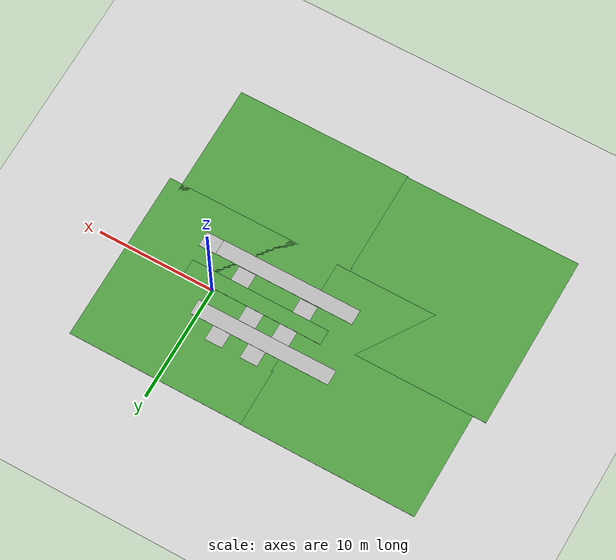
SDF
<sdf version="1.7">
 <world name="default">
  <model name="ground_plane">
   <static>1</static>
   <link name="link">
    <collision name="collision">
     <geometry><plane><normal>0 0 1</normal><size>100 100</size></plane></geometry>
     <surface>
      <contact><collide_bitmask>65535</collide_bitmask></contact>
      <friction><ode><mu>100</mu><mu2>50</mu2></ode></friction>
     </surface>
    </collision>
    <visual name="visual">
     <cast_shadows>0</cast_shadows>
     <geometry><plane><normal>0 0 1</normal><size>100 100</size></plane></geometry>
     <material>
      <script><uri>file://media/materials/scripts/gazebo.material</uri><name>Gazebo/Grey</name></script>
     </material>
    </visual>
   </link>
  </model>
  <model name="grasspatch">
   <static>1</static>
   <link name="link">
    <collision name="collision">
     <geometry><plane><normal>0 0 1</normal><size>15 15</size></plane></geometry>
     <surface><friction><ode><mu>0.5</mu><mu2>0.5</mu2></ode></friction></surface>
    </collision>
    <visual name="visual_s10">
     <cast_shadows>0</cast_shadows>
     <geometry><plane><normal>0 0 1</normal><size>15 15</size></plane></geometry>
     <material>
      <script>
       <uri>model://grasspatch//materials/scripts/</uri>
       <uri>model://grasspatch//materials/textures/</uri>
       <name>vrc/grass</name>
      </script>
     </material>
    </visual>
   </link>
   <pose>0.161321 0.861179 0 0 -0 0</pose>
  </model>
  <model name="grasspatch_0">
   <static>1</static>
   <link name="link">
    <collision name="collision">
     <geometry><plane><normal>0 0 1</normal><size>15 15</size></plane></geometry>
     <surface><friction><ode><mu>0.5</mu><mu2>0.5</mu2></ode></friction></surface>
    </collision>
    <visual name="visual_s10">
     <cast_shadows>0</cast_shadows>
     <geometry><plane><normal>0 0 1</normal><size>15 15</size></plane></geometry>
     <material>
      <script>
       <uri>model://grasspatch//materials/scripts/</uri>
       <uri>model://grasspatch//materials/textures/</uri>
       <name>vrc/grass</name>
      </script>
     </material>
    </visual>
   </link>
   <pose>-14.7261 0.888719 0 0 -0 0</pose>
  </model>
  <model name="rigid_surface">
   <link name="link">
    <inertial>
     <mass>1</mass>
     <inertia>
      <ixx>0.166667</ixx>
      <ixy>0</ixy>
      <ixz>0</ixz>
      <iyy>0.166667</iyy>
      <iyz>0</iyz>
      <izz>0.166667</izz>
     </inertia>
    </inertial>
    <visual name="visual">
     <geometry><box><size>1.5 1.3 0.02</size></box></geometry>
     <material>
      <script><name>Gazebo/CoM</name><uri>file://media/materials/scripts/gazebo.material</uri></script>
      <shader type="pixel"><normal_map>__default__</normal_map></shader>
      <ambient>0.3 0.3 0.3 1</ambient>
      <diffuse>0.7 0.7 0.7 1</diffuse>
      <specular>0.01 0.01 0.01 1</specular>
      <emissive>0 0 0 1</emissive>
     </material>
    </visual>
    <collision name="collision">
     <geometry><box><size>1.5 1.3 0.02</size></box></geometry>
     <surface>
      <friction>
       <ode><mu>1</mu><mu2>1</mu2><fdir1>0 0 0</fdir1><slip1>0</slip1><slip2>0</slip2></ode>
       <torsional>
        <coefficient>1</coefficient>
        <patch_radius>0</patch_radius>
        <surface_radius>0</surface_radius>
        <use_patch_radius>1</use_patch_radius>
        <ode><slip>0</slip></ode>
       </torsional>
      </friction>
      <bounce><restitution_coefficient>0</restitution_coefficient><threshold>1e+06</threshold></bounce>
      <contact>
       <collide_without_contact>0</collide_without_contact>
       <collide_without_contact_bitmask>1</collide_without_contact_bitmask>
       <collide_bitmask>1</collide_bitmask>
       <ode>
        <soft_cfm>0</soft_cfm>
        <soft_erp>0.2</soft_erp>
        <kp>1e+13</kp>
        <kd>1</kd>
        <max_vel>0.01</max_vel>
        <min_depth>0</min_depth>
       </ode>
       <bullet>
        <split_impulse>1</split_impulse>
        <split_impulse_penetration_threshold>-0.01</split_impulse_penetration_threshold>
        <soft_cfm>0</soft_cfm>
        <soft_erp>0.2</soft_erp>
        <kp>1e+13</kp>
        <kd>1</kd>
       </bullet>
      </contact>
     </surface>
    </collision>
   </link>
   <static>1</static>
   <pose>2.09076 -3.42533 0.016356 0 1e-05 0</pose>
  </model>
  <model name="rigid_surface_0">
   <link name="link">
    <inertial>
     <mass>1</mass>
     <inertia>
      <ixx>0.166667</ixx>
      <ixy>0</ixy>
      <ixz>0</ixz>
      <iyy>0.166667</iyy>
      <iyz>0</iyz>
      <izz>0.166667</izz>
     </inertia>
    </inertial>
    <visual name="visual">
     <geometry><box><size>1.5 1.3 0.02</size></box></geometry>
     <material>
      <script><name>Gazebo/CoM</name><uri>file://media/materials/scripts/gazebo.material</uri></script>
      <shader type="pixel"><normal_map>__default__</normal_map></shader>
      <ambient>0.3 0.3 0.3 1</ambient>
      <diffuse>0.7 0.7 0.7 1</diffuse>
      <specular>0.01 0.01 0.01 1</specular>
      <emissive>0 0 0 1</emissive>
     </material>
    </visual>
    <collision name="collision">
     <geometry><box><size>1.5 1.3 0.02</size></box></geometry>
     <surface>
      <friction>
       <ode><mu>1</mu><mu2>1</mu2><fdir1>0 0 0</fdir1><slip1>0</slip1><slip2>0</slip2></ode>
       <torsional>
        <coefficient>1</coefficient>
        <patch_radius>0</patch_radius>
        <surface_radius>0</surface_radius>
        <use_patch_radius>1</use_patch_radius>
        <ode><slip>0</slip></ode>
       </torsional>
      </friction>
      <bounce><restitution_coefficient>0</restitution_coefficient><threshold>1e+06</threshold></bounce>
      <contact>
       <collide_without_contact>0</collide_without_contact>
       <collide_without_contact_bitmask>1</collide_without_contact_bitmask>
       <collide_bitmask>1</collide_bitmask>
       <ode>
        <soft_cfm>0</soft_cfm>
        <soft_erp>0.2</soft_erp>
        <kp>1e+13</kp>
        <kd>1</kd>
        <max_vel>0.01</max_vel>
        <min_depth>0</min_depth>
       </ode>
       <bullet>
        <split_impulse>1</split_impulse>
        <split_impulse_penetration_threshold>-0.01</split_impulse_penetration_threshold>
        <soft_cfm>0</soft_cfm>
        <soft_erp>0.2</soft_erp>
        <kp>1e+13</kp>
        <kd>1</kd>
       </bullet>
      </contact>
     </surface>
    </collision>
   </link>
   <static>1</static>
   <pose>-6.95943 -2.11349 0 0 -0 0</pose>
  </model>
  <model name="rigid_surface_1">
   <link name="link">
    <inertial>
     <mass>1</mass>
     <inertia>
      <ixx>0.166667</ixx>
      <ixy>0</ixy>
      <ixz>0</ixz>
      <iyy>0.166667</iyy>
      <iyz>0</iyz>
      <izz>0.166667</izz>
     </inertia>
    </inertial>
    <visual name="visual">
     <geometry><box><size>1.5 1.3 0.02</size></box></geometry>
     <material>
      <script><name>Gazebo/CoM</name><uri>file://media/materials/scripts/gazebo.material</uri></script>
      <shader type="pixel"><normal_map>__default__</normal_map></shader>
      <ambient>0.3 0.3 0.3 1</ambient>
      <diffuse>0.7 0.7 0.7 1</diffuse>
      <specular>0.01 0.01 0.01 1</specular>
      <emissive>0 0 0 1</emissive>
     </material>
    </visual>
    <collision name="collision">
     <geometry><box><size>1.5 1.3 0.02</size></box></geometry>
     <surface>
      <friction>
       <ode><mu>1</mu><mu2>1</mu2><fdir1>0 0 0</fdir1><slip1>0</slip1><slip2>0</slip2></ode>
       <torsional>
        <coefficient>1</coefficient>
        <patch_radius>0</patch_radius>
        <surface_radius>0</surface_radius>
        <use_patch_radius>1</use_patch_radius>
        <ode><slip>0</slip></ode>
       </torsional>
      </friction>
      <bounce><restitution_coefficient>0</restitution_coefficient><threshold>1e+06</threshold></bounce>
      <contact>
       <collide_without_contact>0</collide_without_contact>
       <collide_without_contact_bitmask>1</collide_without_contact_bitmask>
       <collide_bitmask>1</collide_bitmask>
       <ode>
        <soft_cfm>0</soft_cfm>
        <soft_erp>0.2</soft_erp>
        <kp>1e+13</kp>
        <kd>1</kd>
        <max_vel>0.01</max_vel>
        <min_depth>0</min_depth>
       </ode>
       <bullet>
        <split_impulse>1</split_impulse>
        <split_impulse_penetration_threshold>-0.01</split_impulse_penetration_threshold>
        <soft_cfm>0</soft_cfm>
        <soft_erp>0.2</soft_erp>
        <kp>1e+13</kp>
        <kd>1</kd>
       </bullet>
      </contact>
     </surface>
    </collision>
   </link>
   <static>1</static>
   <pose>-1.51533 -2.12704 0 0 -0 0</pose>
  </model>
  <model name="rigid_surface_2">
   <link name="link">
    <inertial>
     <mass>1</mass>
     <inertia>
      <ixx>0.166667</ixx>
      <ixy>0</ixy>
      <ixz>0</ixz>
      <iyy>0.166667</iyy>
      <iyz>0</iyz>
      <izz>0.166667</izz>
     </inertia>
    </inertial>
    <visual name="visual">
     <geometry><box><size>1.5 1.3 0.02</size></box></geometry>
     <material>
      <script><name>Gazebo/CoM</name><uri>file://media/materials/scripts/gazebo.material</uri></script>
      <shader type="pixel"><normal_map>__default__</normal_map></shader>
      <ambient>0.3 0.3 0.3 1</ambient>
      <diffuse>0.7 0.7 0.7 1</diffuse>
      <specular>0.01 0.01 0.01 1</specular>
      <emissive>0 0 0 1</emissive>
     </material>
    </visual>
    <collision name="collision">
     <geometry><box><size>1.5 1.3 0.02</size></box></geometry>
     <surface>
      <friction>
       <ode><mu>1</mu><mu2>1</mu2><fdir1>0 0 0</fdir1><slip1>0</slip1><slip2>0</slip2></ode>
       <torsional>
        <coefficient>1</coefficient>
        <patch_radius>0</patch_radius>
        <surface_radius>0</surface_radius>
        <use_patch_radius>1</use_patch_radius>
        <ode><slip>0</slip></ode>
       </torsional>
      </friction>
      <bounce><restitution_coefficient>0</restitution_coefficient><threshold>1e+06</threshold></bounce>
      <contact>
       <collide_without_contact>0</collide_without_contact>
       <collide_without_contact_bitmask>1</collide_without_contact_bitmask>
       <collide_bitmask>1</collide_bitmask>
       <ode>
        <soft_cfm>0</soft_cfm>
        <soft_erp>0.2</soft_erp>
        <kp>1e+13</kp>
        <kd>1</kd>
        <max_vel>0.01</max_vel>
        <min_depth>0</min_depth>
       </ode>
       <bullet>
        <split_impulse>1</split_impulse>
        <split_impulse_penetration_threshold>-0.01</split_impulse_penetration_threshold>
        <soft_cfm>0</soft_cfm>
        <soft_erp>0.2</soft_erp>
        <kp>1e+13</kp>
        <kd>1</kd>
       </bullet>
      </contact>
     </surface>
    </collision>
   </link>
   <static>1</static>
   <pose>-3.68471 0.457009 0 0 -0 0</pose>
  </model>
  <model name="rigid_surface_3">
   <link name="link">
    <inertial>
     <mass>1</mass>
     <inertia>
      <ixx>0.166667</ixx>
      <ixy>0</ixy>
      <ixz>0</ixz>
      <iyy>0.166667</iyy>
      <iyz>0</iyz>
      <izz>0.166667</izz>
     </inertia>
    </inertial>
    <visual name="visual">
     <geometry><box><size>1.5 1.3 0.02</size></box></geometry>
     <material>
      <script><name>Gazebo/CoM</name><uri>file://media/materials/scripts/gazebo.material</uri></script>
      <shader type="pixel"><normal_map>__default__</normal_map></shader>
      <ambient>0.3 0.3 0.3 1</ambient>
      <diffuse>0.7 0.7 0.7 1</diffuse>
      <specular>0.01 0.01 0.01 1</specular>
      <emissive>0 0 0 1</emissive>
     </material>
    </visual>
    <collision name="collision">
     <geometry><box><size>1.5 1.3 0.02</size></box></geometry>
     <surface>
      <friction>
       <ode><mu>1</mu><mu2>1</mu2><fdir1>0 0 0</fdir1><slip1>0</slip1><slip2>0</slip2></ode>
       <torsional>
        <coefficient>1</coefficient>
        <patch_radius>0</patch_radius>
        <surface_radius>0</surface_radius>
        <use_patch_radius>1</use_patch_radius>
        <ode><slip>0</slip></ode>
       </torsional>
      </friction>
      <bounce><restitution_coefficient>0</restitution_coefficient><threshold>1e+06</threshold></bounce>
      <contact>
       <collide_without_contact>0</collide_without_contact>
       <collide_without_contact_bitmask>1</collide_without_contact_bitmask>
       <collide_bitmask>1</collide_bitmask>
       <ode>
        <soft_cfm>0</soft_cfm>
        <soft_erp>0.2</soft_erp>
        <kp>1e+13</kp>
        <kd>1</kd>
        <max_vel>0.01</max_vel>
        <min_depth>0</min_depth>
       </ode>
       <bullet>
        <split_impulse>1</split_impulse>
        <split_impulse_penetration_threshold>-0.01</split_impulse_penetration_threshold>
        <soft_cfm>0</soft_cfm>
        <soft_erp>0.2</soft_erp>
        <kp>1e+13</kp>
        <kd>1</kd>
       </bullet>
      </contact>
     </surface>
    </collision>
   </link>
   <static>1</static>
   <pose>-6.61521 0.463482 0 0 -0 0</pose>
  </model>
  <model name="rigid_surface_4">
   <link name="link">
    <inertial>
     <mass>1</mass>
     <inertia>
      <ixx>0.166667</ixx>
      <ixy>0</ixy>
      <ixz>0</ixz>
      <iyy>0.166667</iyy>
      <iyz>0</iyz>
      <izz>0.166667</izz>
     </inertia>
    </inertial>
    <visual name="visual">
     <geometry><box><size>1.5 1.3 0.02</size></box></geometry>
     <material>
      <script><name>Gazebo/CoM</name><uri>file://media/materials/scripts/gazebo.material</uri></script>
      <shader type="pixel"><normal_map>__default__</normal_map></shader>
      <ambient>0.3 0.3 0.3 1</ambient>
      <diffuse>0.7 0.7 0.7 1</diffuse>
      <specular>0.01 0.01 0.01 1</specular>
      <emissive>0 0 0 1</emissive>
     </material>
    </visual>
    <collision name="collision">
     <geometry><box><size>1.5 1.3 0.02</size></box></geometry>
     <surface>
      <friction>
       <ode><mu>1</mu><mu2>1</mu2><fdir1>0 0 0</fdir1><slip1>0</slip1><slip2>0</slip2></ode>
       <torsional>
        <coefficient>1</coefficient>
        <patch_radius>0</patch_radius>
        <surface_radius>0</surface_radius>
        <use_patch_radius>1</use_patch_radius>
        <ode><slip>0</slip></ode>
       </torsional>
      </friction>
      <bounce><restitution_coefficient>0</restitution_coefficient><threshold>1e+06</threshold></bounce>
      <contact>
       <collide_without_contact>0</collide_without_contact>
       <collide_without_contact_bitmask>1</collide_without_contact_bitmask>
       <collide_bitmask>1</collide_bitmask>
       <ode>
        <soft_cfm>0</soft_cfm>
        <soft_erp>0.2</soft_erp>
        <kp>1e+13</kp>
        <kd>1</kd>
        <max_vel>0.01</max_vel>
        <min_depth>0</min_depth>
       </ode>
       <bullet>
        <split_impulse>1</split_impulse>
        <split_impulse_penetration_threshold>-0.01</split_impulse_penetration_threshold>
        <soft_cfm>0</soft_cfm>
        <soft_erp>0.2</soft_erp>
        <kp>1e+13</kp>
        <kd>1</kd>
       </bullet>
      </contact>
     </surface>
    </collision>
   </link>
   <static>1</static>
   <pose>-5.33596 3.07243 0 0 -0 0</pose>
  </model>
  <model name="rigid_surface_5">
   <link name="link">
    <inertial>
     <mass>1</mass>
     <inertia>
      <ixx>0.166667</ixx>
      <ixy>0</ixy>
      <ixz>0</ixz>
      <iyy>0.166667</iyy>
      <iyz>0</iyz>
      <izz>0.166667</izz>
     </inertia>
    </inertial>
    <visual name="visual">
     <geometry><box><size>1.5 1.3 0.02</size></box></geometry>
     <material>
      <script><name>Gazebo/CoM</name><uri>file://media/materials/scripts/gazebo.material</uri></script>
      <shader type="pixel"><normal_map>__default__</normal_map></shader>
      <ambient>0.3 0.3 0.3 1</ambient>
      <diffuse>0.7 0.7 0.7 1</diffuse>
      <specular>0.01 0.01 0.01 1</specular>
      <emissive>0 0 0 1</emissive>
     </material>
    </visual>
    <collision name="collision">
     <geometry><box><size>1.5 1.3 0.02</size></box></geometry>
     <surface>
      <friction>
       <ode><mu>1</mu><mu2>1</mu2><fdir1>0 0 0</fdir1><slip1>0</slip1><slip2>0</slip2></ode>
       <torsional>
        <coefficient>1</coefficient>
        <patch_radius>0</patch_radius>
        <surface_radius>0</surface_radius>
        <use_patch_radius>1</use_patch_radius>
        <ode><slip>0</slip></ode>
       </torsional>
      </friction>
      <bounce><restitution_coefficient>0</restitution_coefficient><threshold>1e+06</threshold></bounce>
      <contact>
       <collide_without_contact>0</collide_without_contact>
       <collide_without_contact_bitmask>1</collide_without_contact_bitmask>
       <collide_bitmask>1</collide_bitmask>
       <ode>
        <soft_cfm>0</soft_cfm>
        <soft_erp>0.2</soft_erp>
        <kp>1e+13</kp>
        <kd>1</kd>
        <max_vel>0.01</max_vel>
        <min_depth>0</min_depth>
       </ode>
       <bullet>
        <split_impulse>1</split_impulse>
        <split_impulse_penetration_threshold>-0.01</split_impulse_penetration_threshold>
        <soft_cfm>0</soft_cfm>
        <soft_erp>0.2</soft_erp>
        <kp>1e+13</kp>
        <kd>1</kd>
       </bullet>
      </contact>
     </surface>
    </collision>
   </link>
   <static>1</static>
   <pose>-2.26883 3.08034 0 0 -0 0</pose>
  </model>
  <model name="grasspatch_1">
   <static>1</static>
   <link name="link">
    <collision name="collision">
     <geometry><plane><normal>0 0 1</normal><size>15 15</size></plane></geometry>
     <surface><friction><ode><mu>0.5</mu><mu2>0.5</mu2></ode></friction></surface>
    </collision>
    <visual name="visual_s10">
     <cast_shadows>0</cast_shadows>
     <geometry><plane><normal>0 0 1</normal><size>15 15</size></plane></geometry>
     <material>
      <script>
       <uri>model://grasspatch//materials/scripts/</uri>
       <uri>model://grasspatch//materials/textures/</uri>
       <name>vrc/grass</name>
      </script>
     </material>
    </visual>
   </link>
   <pose>-0.906611 -8.32499 0 0 -0 0</pose>
  </model>
  <model name="grasspatch_2">
   <static>1</static>
   <link name="link">
    <collision name="collision">
     <geometry><plane><normal>0 0 1</normal><size>15 15</size></plane></geometry>
     <surface><friction><ode><mu>0.5</mu><mu2>0.5</mu2></ode></friction></surface>
    </collision>
    <visual name="visual_s10">
     <cast_shadows>0</cast_shadows>
     <geometry><plane><normal>0 0 1</normal><size>15 15</size></plane></geometry>
     <material>
      <script>
       <uri>model://grasspatch//materials/scripts/</uri>
       <uri>model://grasspatch//materials/textures/</uri>
       <name>vrc/grass</name>
      </script>
     </material>
    </visual>
   </link>
   <pose>-15.8327 -8.2567 0 0 -0 0</pose>
  </model>
  <model name="gravelTerrain">
   <link name="link_0">
    <inertial>
     <mass>1</mass>
     <inertia>
      <ixx>0.166667</ixx>
      <ixy>0</ixy>
      <ixz>0</ixz>
      <iyy>0.166667</iyy>
      <iyz>0</iyz>
      <izz>0.166667</izz>
     </inertia>
    </inertial>
    <visual name="visual">
     <geometry><box><size>12 1.3 0.02</size></box></geometry>
     <material>
      <lighting>1</lighting>
      <script><uri>file://media/materials/scripts/gazebo.material</uri><name>Gazebo/Footway</name></script>
      <shader type="pixel"><normal_map>__default__</normal_map></shader>
      <ambient>0.3 0.3 0.3 1</ambient>
      <diffuse>0.7 0.7 0.7 1</diffuse>
      <specular>0.01 0.01 0.01 1</specular>
      <emissive>0 0 0 1</emissive>
     </material>
    </visual>
    <collision name="collision">
     <geometry><box><size>12 1.3 0.02</size></box></geometry>
     <surface>
      <friction>
       <ode><mu>1</mu><mu2>1</mu2><fdir1>0 0 0</fdir1><slip1>0</slip1><slip2>0</slip2></ode>
       <torsional>
        <coefficient>1</coefficient>
        <patch_radius>0</patch_radius>
        <surface_radius>0</surface_radius>
        <use_patch_radius>1</use_patch_radius>
        <ode><slip>0</slip></ode>
       </torsional>
      </friction>
      <bounce><restitution_coefficient>0</restitution_coefficient><threshold>1e+06</threshold></bounce>
      <contact>
       <collide_without_contact>0</collide_without_contact>
       <collide_without_contact_bitmask>1</collide_without_contact_bitmask>
       <collide_bitmask>1</collide_bitmask>
       <ode>
        <soft_cfm>0</soft_cfm>
        <soft_erp>0.2</soft_erp>
        <kp>2.3e+07</kp>
        <kd>14000</kd>
        <max_vel>0.01</max_vel>
        <min_depth>0</min_depth>
       </ode>
       <bullet>
        <split_impulse>1</split_impulse>
        <split_impulse_penetration_threshold>-0.01</split_impulse_penetration_threshold>
        <soft_cfm>0</soft_cfm>
        <soft_erp>0.2</soft_erp>
        <kp>2.3e+07</kp>
        <kd>14000</kd>
       </bullet>
      </contact>
     </surface>
    </collision>
   </link>
   <static>1</static>
   <pose>-4.65924 -3.45547 0.01 0 -0 1e-06</pose>
  </model>
  <model name="sandTerrain">
   <link name="link_0">
    <inertial>
     <mass>1</mass>
     <inertia>
      <ixx>0.166667</ixx>
      <ixy>0</ixy>
      <ixz>0</ixz>
      <iyy>0.166667</iyy>
      <iyz>0</iyz>
      <izz>0.166667</izz>
     </inertia>
    </inertial>
    <visual name="visual">
     <geometry><box><size>12 1.3 0.02</size></box></geometry>
     <material>
      <lighting>1</lighting>
      <script><uri>file://media/materials/scripts/gazebo.material</uri><name>Gazebo/Grass</name></script>
      <shader type="pixel"><normal_map>__default__</normal_map></shader>
      <ambient>0.3 0.3 0.3 1</ambient>
      <diffuse>0.7 0.7 0.7 1</diffuse>
      <specular>0.01 0.01 0.01 1</specular>
      <emissive>0 0 0 1</emissive>
     </material>
    </visual>
    <collision name="collision">
     <geometry><box><size>12 1.3 0.02</size></box></geometry>
     <surface>
      <friction>
       <ode><mu>1</mu><mu2>1</mu2><fdir1>0 0 0</fdir1><slip1>0</slip1><slip2>0</slip2></ode>
       <torsional>
        <coefficient>1</coefficient>
        <patch_radius>0</patch_radius>
        <surface_radius>0</surface_radius>
        <use_patch_radius>1</use_patch_radius>
        <ode><slip>0</slip></ode>
       </torsional>
      </friction>
      <bounce><restitution_coefficient>0</restitution_coefficient><threshold>1e+06</threshold></bounce>
      <contact>
       <collide_without_contact>0</collide_without_contact>
       <collide_without_contact_bitmask>1</collide_without_contact_bitmask>
       <collide_bitmask>1</collide_bitmask>
       <ode>
        <soft_cfm>0</soft_cfm>
        <soft_erp>0.2</soft_erp>
        <kp>9.1e+06</kp>
        <kd>9000</kd>
        <max_vel>0.01</max_vel>
        <min_depth>0</min_depth>
       </ode>
       <bullet>
        <split_impulse>1</split_impulse>
        <split_impulse_penetration_threshold>-0.01</split_impulse_penetration_threshold>
        <soft_cfm>0</soft_cfm>
        <soft_erp>0.2</soft_erp>
        <kp>9.1e+06</kp>
        <kd>9000</kd>
       </bullet>
      </contact>
     </surface>
    </collision>
   </link>
   <static>1</static>
   <pose>-3.38895 -0.840197 0.02 0 0 -0.001972</pose>
  </model>
  <model name="testConcrete">
   <link name="link_0">
    <inertial>
     <mass>1</mass>
     <inertia>
      <ixx>0.166667</ixx>
      <ixy>0</ixy>
      <ixz>0</ixz>
      <iyy>0.166667</iyy>
      <iyz>0</iyz>
      <izz>0.166667</izz>
     </inertia>
    </inertial>
    <visual name="visual">
     <geometry><box><size>12 1.3 0.02</size></box></geometry>
     <material>
      <lighting>1</lighting>
      <script><uri>file://media/materials/scripts/gazebo.material</uri><name>Gazebo/Motorway</name></script>
      <shader type="pixel"><normal_map>__default__</normal_map></shader>
      <ambient>0.3 0.3 0.3 1</ambient>
      <diffuse>0.7 0.7 0.7 1</diffuse>
      <specular>0.01 0.01 0.01 1</specular>
      <emissive>0 0 0 1</emissive>
     </material>
    </visual>
    <collision name="collision">
     <geometry><box><size>12 1.3 0.02</size></box></geometry>
     <surface>
      <friction>
       <ode><mu>1</mu><mu2>1</mu2><fdir1>0 0 0</fdir1><slip1>0</slip1><slip2>0</slip2></ode>
       <torsional>
        <coefficient>1</coefficient>
        <patch_radius>0</patch_radius>
        <surface_radius>0</surface_radius>
        <use_patch_radius>1</use_patch_radius>
        <ode><slip>0</slip></ode>
       </torsional>
      </friction>
      <bounce><restitution_coefficient>0</restitution_coefficient><threshold>1e+06</threshold></bounce>
      <contact>
       <collide_without_contact>0</collide_without_contact>
       <collide_without_contact_bitmask>1</collide_without_contact_bitmask>
       <collide_bitmask>1</collide_bitmask>
       <ode>
        <soft_cfm>0</soft_cfm>
        <soft_erp>0.2</soft_erp>
        <kp>3.4e+09</kp>
        <kd>180000</kd>
        <max_vel>0.01</max_vel>
        <min_depth>0</min_depth>
       </ode>
       <bullet>
        <split_impulse>1</split_impulse>
        <split_impulse_penetration_threshold>-0.01</split_impulse_penetration_threshold>
        <soft_cfm>0</soft_cfm>
        <soft_erp>0.2</soft_erp>
        <kp>3.4e+09</kp>
        <kd>180000</kd>
       </bullet>
      </contact>
     </surface>
    </collision>
   </link>
   <static>1</static>
   <pose>-5.48773 1.7689 0.01 0 -0 0.002882</pose>
  </model>
 </world>
</sdf>
